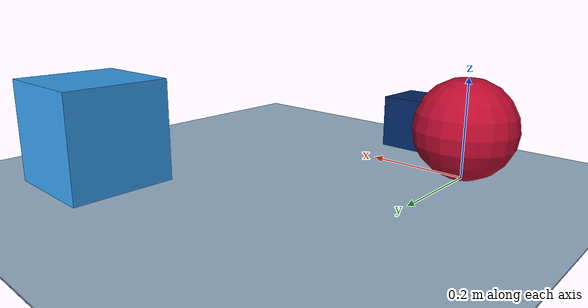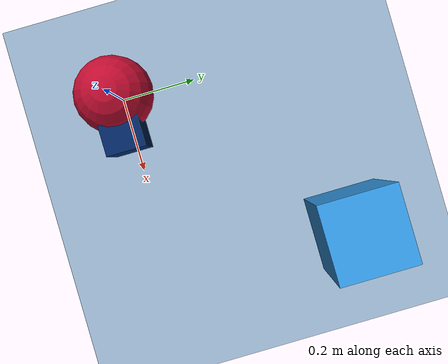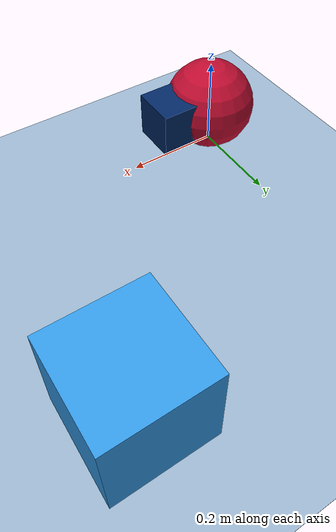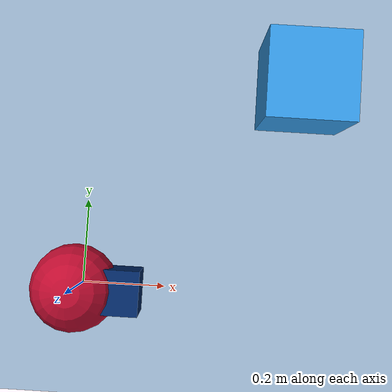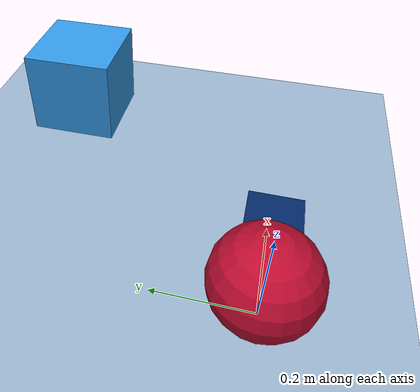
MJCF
<mujoco>
  <size njmax="3000" nconmax="1000"/>
  <option timestep="0.002" ls_iterations="6"/>
  <visual>
    <headlight ambient="0.5 0.5 0.5" diffuse="0.9 0.9 0.9" specular="0.2 0.2 0.2"/>
    <map znear="0.01" zfar="30"/>
  </visual>
  <statistic meansize="0.23" extent="3.96"/>
  <default>
    <geom condim="6" density="1"/>
    <joint damping=".001"/>
    <motor ctrlrange="-1 1" ctrllimited="true" forcerange="-.05 .05" forcelimited="true"/>
    <velocity ctrlrange="-1 1" ctrllimited="true" forcerange="-.05 .05" forcelimited="true"/>
    <site size="0.032" type="sphere"/>
  </default>
  <worldbody>
    <geom name="floor" type="plane" size="10 10 0.1" condim="6" rgba="0.5 0.6 0.7 1" />
    <!-- Visual-only inner floor (no collisions) -->
    <geom name="inner_floor" type="box" size="3.5 3.5 0.001" pos="0 0 0.001" rgba="0.6 0.7 0.8 1" contype="0" conaffinity="0"/>
    <camera name="fixedfar" pos="0 -5 5" zaxis="0 -1 1.15" mode="fixed"/>

    <!-- Agent body -->
    <body name="agent" pos="0 0 .1">
      <camera name="track" pos="0 -2.5 2.5" zaxis="0 -1 1" mode="trackcom"/>
      <camera name="vision" pos="0 0 .15" xyaxes="0 -1 0 .4 0 1" fovy="90"/>
      <camera name="vision_back" pos="0 0 .15" xyaxes="0 1 0 0 0 1" fovy="90"/>
      <joint type="slide" axis="1 0 0" name="x" damping="0.01"/>
      <joint type="slide" axis="0 1 0" name="y" damping="0.01"/>
      <joint type="hinge" axis="0 0 1" name="z" damping="0.005"/>
      <geom name="agent" type="sphere" size=".1" friction="1 0.01 0.01" rgba="0.7412 0.0431 0.1843 1"/>
      <geom name="pointarrow" pos="0.1 0 0" size="0.05 0.05 0.05" type="box" rgba="0.0039 0.1529 0.3961 1"/>
      <site name="agent" rgba="1 0 0 .1"/>
    </body>

    <!-- Pushable block (easy to push, smooth sliding) -->
    <body name="block" pos="0.5 0.5 0.1">
      <joint name="block_x" type="slide" axis="1 0 0" damping="0.015"/>
      <joint name="block_y" type="slide" axis="0 1 0" damping="0.015"/>
      <geom name="block" type="box" size="0.1 0.1 0.1" density="0.15" friction="0.08 0.002 0.001" rgba="0.2 0.6 0.9 1"/>
    </body>

  </worldbody>
  <sensor>
    <!-- Used for observation -->
    <accelerometer site="agent" name="accelerometer"/>
    <velocimeter site="agent" name="velocimeter"/>
    <gyro site="agent" name="gyro"/>
    <magnetometer site="agent" name="magnetometer"/>

    <!-- Used for intrinsic constraints -->
    <subtreecom body="agent" name="subtreecom"/>
    <subtreelinvel body="agent" name="subtreelinvel"/>
    <subtreeangmom body="agent" name="subtreeangmom"/>
  </sensor>
  <actuator>
    <motor gear="0.3 0 0 0 0 0" site="agent" name="x"/>
    <velocity gear="0.3" jointinparent="z" name="z"/>
  </actuator>
</mujoco>
